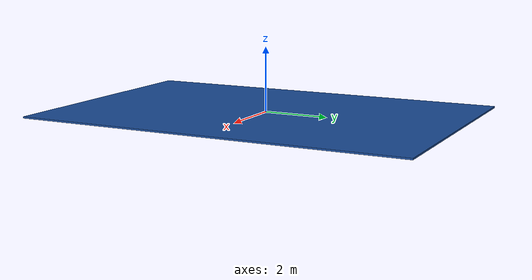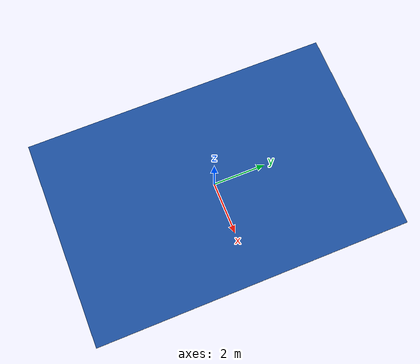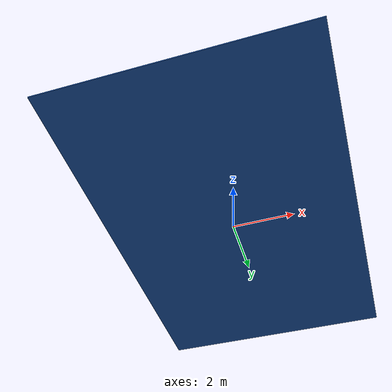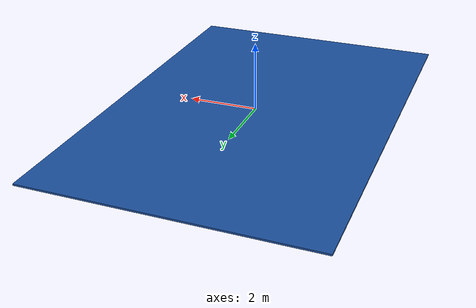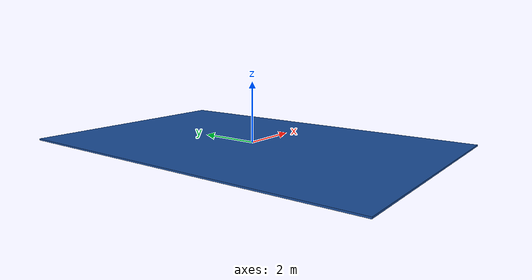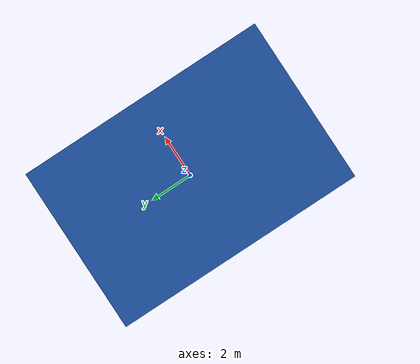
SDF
<?xml version="1.0" ?>
<sdf version="1.9">
  <model name="lake">
    <static>true</static>
    <link name="link">
      <collision name="collision">
        <geometry><box><size>8 12 0.05</size></box></geometry>
      </collision>
      <visual name="visual">
        <geometry><box><size>8 12 0.05</size></box></geometry>
        <material>
          <ambient>0.05 0.2 0.4 1</ambient>
          <diffuse>0.1 0.3 0.6 1</diffuse>
        </material>
      </visual>
    </link>
  </model>
</sdf>
